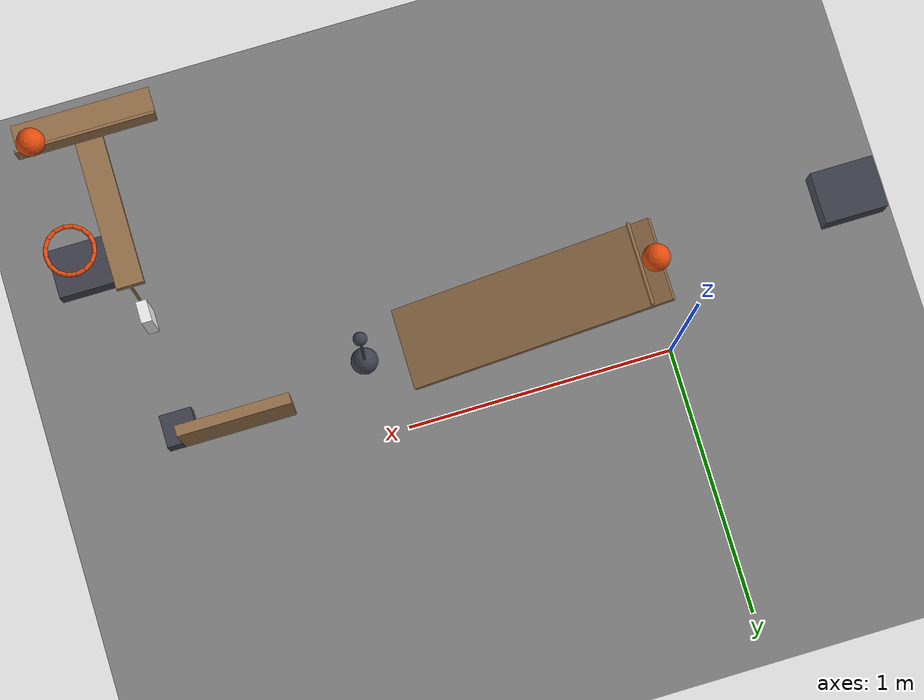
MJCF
<mujoco model="revised_spring_ramp_pendulum_domino_prototype">
  <compiler angle="radian"/>
  <option timestep="0.002"/>
  <worldbody>
    <geom name="floor" type="plane" size="6 6 0.1" friction="0.68 0.005 0.002"/>
    <body name="ramp1">
      <geom name="ramp1" type="box" pos="0.469847 -0.258425 0.32101" size="0.5 0.15 0.02" euler="0 0.349066 0" friction="0.68 0.005 0.002" solref="0.01 1" rgba="0.6 0.45 0.3 1"/>
    </body>
    <body name="cart1" pos="-34.8381 -0.258425 -93.2295">
      <joint name="cart1_axial_guide" type="hinge" pos="0 0 0" axis="0 1 0" limited="true" range="0 0.0174533" stiffness="180000" springref="0.00200001" damping="2000"/>
      <geom name="cart1" type="box" pos="34.202 0 93.9693" size="0.11 0.09 0.05" mass="0.5" friction="0.68 0.005 0.002" solref="0.01 1" rgba="0.25 0.25 0.3 1"/>
    </body>
    <body name="ball1" pos="0.0239414 -0.258425 0.557798">
      <freejoint/>
      <geom name="ball1" type="sphere" pos="0 0 0" size="0.05" mass="0.2" condim="6" friction="0.68 0.005 0.002" solref="0.01 1" rgba="0.9 0.3 0.05 1"/>
    </body>
    <body name="ball1 retainer" pos="0.081 -0.258425 0.511">
      <joint name="retainer_hinge" type="hinge" pos="0 0 0" axis="0 1 0" limited="true" range="0 1.5708" stiffness="0.01" springref="-1.0472" damping="0.04"/>
      <geom name="ball1 retainer" type="box" pos="0 0 0.015" size="0.005 0.15 0.015" mass="0.005" friction="0.68 0.005 0.0001" solref="0.01 1" rgba="0.6 0.45 0.3 1"/>
    </body>
    <body name="pendulum1" pos="1.08969 -0.258425 0.67">
      <joint name="pendulum1_hinge" type="hinge" pos="0 0 0" axis="0 1 0" limited="true" range="-0.698132 0" damping="0.04" armature="0.03"/>
      <geom name="pendulum1" type="sphere" pos="0 0 -0.5" size="0.05" mass="0.01" friction="0.68 0.005 0.0001" solref="0.01 1" rgba="0.25 0.25 0.3 1"/>
      <geom name="pendulum rod" type="capsule" size="0.005" fromto="0 0 0 0 0 -0.45" mass="0.01" friction="0.68 0.005 0.0001" solref="0.01 1" rgba="0.25 0.25 0.3 1"/>
      <geom name="pendulum pivot weight" type="sphere" pos="0 0 0" size="0.025" mass="0.33" friction="0.68 0.005 0.0001" solref="0.01 1" rgba="0.25 0.25 0.3 1"/>
    </body>
    <body name="door1" pos="1.38 -0.181865 0.18">
      <joint name="door1_hinge" type="hinge" pos="0 0 0" axis="0 0 1" limited="true" range="-0.174533 1.0472" stiffness="24" springref="-0.174533" damping="0.04"/>
      <geom name="door1" type="box" pos="0.21 0 0" size="0.21 0.02 0.16" mass="0.45" friction="0.68 0.005 0.0001" solref="0.01 1" rgba="0.6 0.45 0.3 1"/>
    </body>
    <body name="block1" pos="1.7984 -0.225184 0.06">
      <freejoint/>
      <geom name="block1" type="box" pos="0 0 0" size="0.06 0.06 0.06" mass="0.35" friction="0.68 0.005 0.002" solref="0.01 1" rgba="0.25 0.25 0.3 1"/>
    </body>
    <body name="domino1" pos="1.7984 -0.645184 0.12">
      <freejoint/>
      <geom name="domino1" type="box" pos="0 0 0" size="0.02 0.04 0.12" mass="0.25" friction="0.68 0.005 0.002" solref="0.01 1" rgba="0.95 0.95 0.95 1"/>
    </body>
    <body name="lever1" pos="1.7984 -0.987194 0.520709">
      <joint name="lever1_hinge" type="hinge" pos="0 0 0" axis="1 0 0" limited="true" range="-1.22173 -0.436332" damping="0.04"/>
      <geom name="lever1" type="box" pos="0 0 0" size="0.05 0.3 0.02" mass="0.485" friction="0.68 0.005 0.0001" solref="0.01 1" rgba="0.6 0.45 0.3 1"/>
      <geom name="lever strike finger" type="capsule" size="0.005" fromto="0 0.3 0 0 0.3 -0.26" mass="0.005" friction="0.68 0.005 0.0001" solref="0.01 1" rgba="0.6 0.45 0.3 1"/>
      <geom name="lever tray base" type="box" pos="0 -0.3 0.025" size="0.25 0.06 0.005" mass="0.005" friction="0.68 0.005 0.0001" solref="0.01 1" rgba="0.6 0.45 0.3 1"/>
      <geom name="lever tray inner wall" type="box" pos="0 -0.24 0.08" size="0.25 0.005 0.05" mass="0.005" friction="0.68 0.005 0.0001" solref="0.01 1" rgba="0.6 0.45 0.3 1"/>
    </body>
    <body name="ball2" pos="1.9784 -1.22528 0.72">
      <freejoint/>
      <geom name="ball2" type="sphere" pos="0 0 0" size="0.05" mass="0.2" condim="6" friction="0.68 0.005 0.002" solref="0.01 1" rgba="0.9 0.3 0.05 1"/>
    </body>
    <body name="ring1">
      <geom name="ring1_00" type="capsule" size="0.008" fromto="2.0664 -0.897194 0.4 2.0597 -0.863518 0.4" friction="0.68 0.005 0.0001" solref="0.01 1" rgba="0.9 0.3 0.05 1"/>
      <geom name="ring1_01" type="capsule" size="0.008" fromto="2.0597 -0.863518 0.4 2.04063 -0.834969 0.4" friction="0.68 0.005 0.0001" solref="0.01 1" rgba="0.9 0.3 0.05 1"/>
      <geom name="ring1_02" type="capsule" size="0.008" fromto="2.04063 -0.834969 0.4 2.01208 -0.815893 0.4" friction="0.68 0.005 0.0001" solref="0.01 1" rgba="0.9 0.3 0.05 1"/>
      <geom name="ring1_03" type="capsule" size="0.008" fromto="2.01208 -0.815893 0.4 1.9784 -0.809194 0.4" friction="0.68 0.005 0.0001" solref="0.01 1" rgba="0.9 0.3 0.05 1"/>
      <geom name="ring1_04" type="capsule" size="0.008" fromto="1.9784 -0.809194 0.4 1.94473 -0.815893 0.4" friction="0.68 0.005 0.0001" solref="0.01 1" rgba="0.9 0.3 0.05 1"/>
      <geom name="ring1_05" type="capsule" size="0.008" fromto="1.94473 -0.815893 0.4 1.91618 -0.834969 0.4" friction="0.68 0.005 0.0001" solref="0.01 1" rgba="0.9 0.3 0.05 1"/>
      <geom name="ring1_06" type="capsule" size="0.008" fromto="1.91618 -0.834969 0.4 1.8971 -0.863518 0.4" friction="0.68 0.005 0.0001" solref="0.01 1" rgba="0.9 0.3 0.05 1"/>
      <geom name="ring1_07" type="capsule" size="0.008" fromto="1.8971 -0.863518 0.4 1.8904 -0.897194 0.4" friction="0.68 0.005 0.0001" solref="0.01 1" rgba="0.9 0.3 0.05 1"/>
      <geom name="ring1_08" type="capsule" size="0.008" fromto="1.8904 -0.897194 0.4 1.8971 -0.93087 0.4" friction="0.68 0.005 0.0001" solref="0.01 1" rgba="0.9 0.3 0.05 1"/>
      <geom name="ring1_09" type="capsule" size="0.008" fromto="1.8971 -0.93087 0.4 1.91618 -0.959419 0.4" friction="0.68 0.005 0.0001" solref="0.01 1" rgba="0.9 0.3 0.05 1"/>
      <geom name="ring1_10" type="capsule" size="0.008" fromto="1.91618 -0.959419 0.4 1.94473 -0.978495 0.4" friction="0.68 0.005 0.0001" solref="0.01 1" rgba="0.9 0.3 0.05 1"/>
      <geom name="ring1_11" type="capsule" size="0.008" fromto="1.94473 -0.978495 0.4 1.9784 -0.985194 0.4" friction="0.68 0.005 0.0001" solref="0.01 1" rgba="0.9 0.3 0.05 1"/>
      <geom name="ring1_12" type="capsule" size="0.008" fromto="1.9784 -0.985194 0.4 2.01208 -0.978495 0.4" friction="0.68 0.005 0.0001" solref="0.01 1" rgba="0.9 0.3 0.05 1"/>
      <geom name="ring1_13" type="capsule" size="0.008" fromto="2.01208 -0.978495 0.4 2.04063 -0.959419 0.4" friction="0.68 0.005 0.0001" solref="0.01 1" rgba="0.9 0.3 0.05 1"/>
      <geom name="ring1_14" type="capsule" size="0.008" fromto="2.04063 -0.959419 0.4 2.0597 -0.93087 0.4" friction="0.68 0.005 0.0001" solref="0.01 1" rgba="0.9 0.3 0.05 1"/>
      <geom name="ring1_15" type="capsule" size="0.008" fromto="2.0597 -0.93087 0.4 2.0664 -0.897194 0.4" friction="0.68 0.005 0.0001" solref="0.01 1" rgba="0.9 0.3 0.05 1"/>
    </body>
    <body name="cart2" pos="1.9784 99.1028 0.05">
      <joint name="cart2_axial_guide" type="hinge" pos="0 0 0" axis="0 0 1" limited="true" range="-0.010472 0.010472" damping="2000"/>
      <geom name="cart2" type="box" pos="0 -100 0" size="0.11 0.09 0.05" mass="0.5" friction="0.68 0.005 0.002" solref="0.01 1" rgba="0.25 0.25 0.3 1"/>
    </body>
  </worldbody>
  <keyframe>
    <key name="start" qpos="0 0.0239414 -0.258425 0.557798 1 0 0 0 0 0 1.0472 1.7984 -0.225184 0.06 1 0 0 0 1.7984 -0.645184 0.12 1 0 0 0 -0.436332 1.9784 -1.22528 0.72 1 0 0 0 0" qvel="0 0 0 0 0 0 0 0 0 0 0 0 0 0 0 0 0 0 0 0 0 0 0 0 0 0 0 0 0 0"/>
  </keyframe>
</mujoco>
